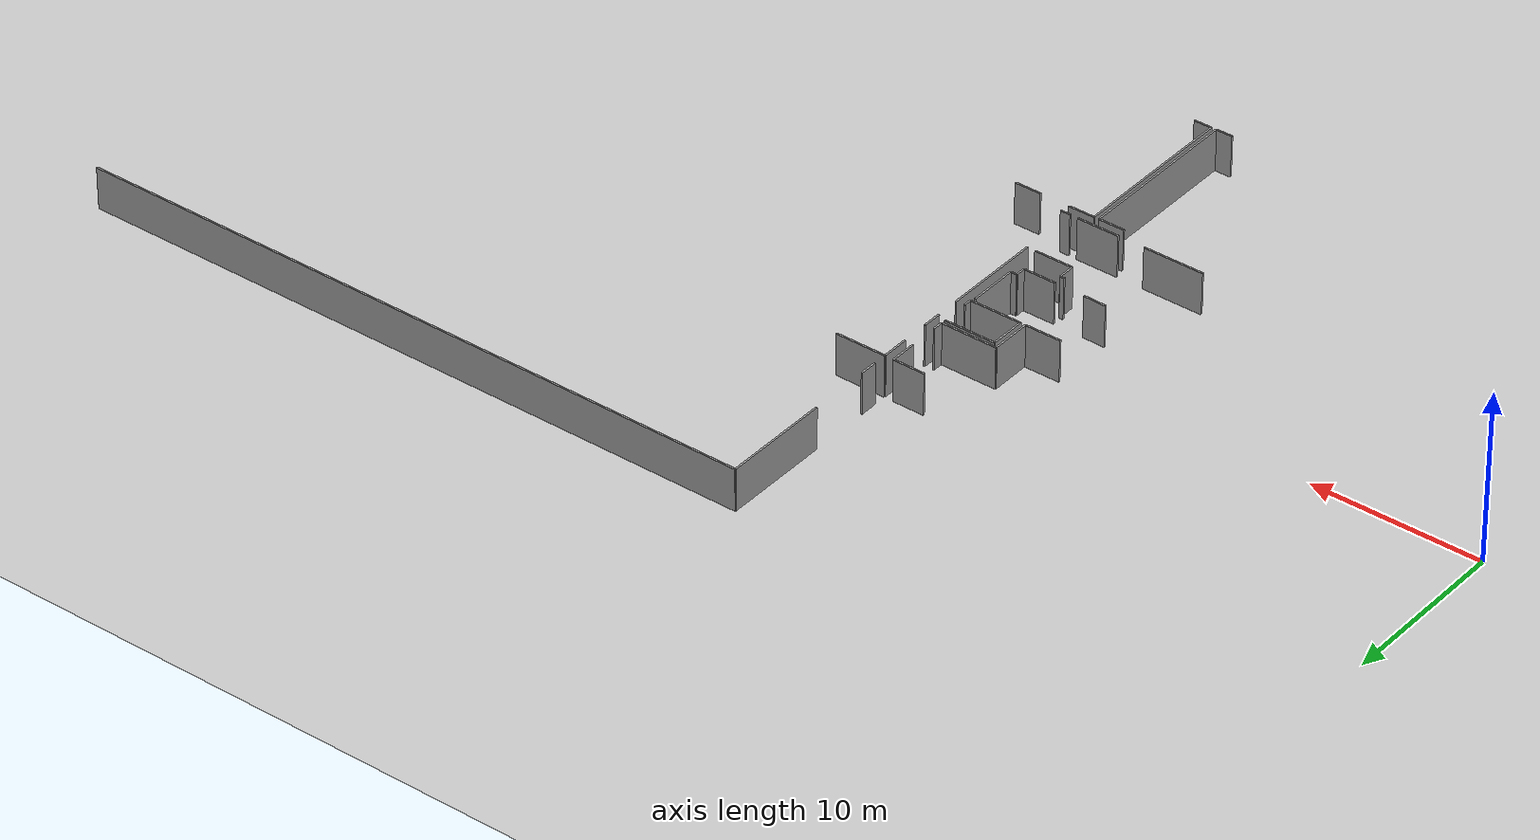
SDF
<sdf version="1.6">
 <world name="default">
  <model name="ground_plane">
   <static>1</static>
   <link name="link">
    <collision name="collision">
     <geometry><plane><normal>0 0 1</normal><size>100 100</size></plane></geometry>
     <surface><friction><ode><mu>100</mu><mu2>50</mu2></ode></friction></surface>
    </collision>
    <visual name="visual">
     <cast_shadows>0</cast_shadows>
     <geometry><plane><normal>0 0 1</normal><size>100 100</size></plane></geometry>
     <material>
      <script><uri>file://media/materials/scripts/gazebo.material</uri><name>Gazebo/Grey</name></script>
     </material>
    </visual>
   </link>
  </model>
  <model name="50055641">
   <static>1</static>
   <link name="Wall_231">
    <collision name="Wall_231_Collision">
     <geometry><box><size>0.249590574972 0.1 2.5</size></box></geometry>
     <pose>0.124795287486 0 1.25 0 0 0</pose>
    </collision>
    <visual name="Wall_231_Visual">
     <pose>0.124795287486 0 1.25 0 0 0</pose>
     <geometry><box><size>0.249590574972 0.1 2.5</size></box></geometry>
     <material>
      <script><uri>file://media/materials/scripts/gazebo.material</uri><name>Gazebo/Grey</name></script>
      <ambient>1 1 1 1</ambient>
     </material>
    </visual>
    <pose>96.645380797 -22.3005243179 0 0 0 0.0</pose>
   </link>
   <link name="Wall_232">
    <collision name="Wall_232_Collision">
     <geometry><box><size>0.997473625411 0.1 2.5</size></box></geometry>
     <pose>0.498736812706 0 1.25 0 0 0</pose>
    </collision>
    <visual name="Wall_232_Visual">
     <pose>0.498736812706 0 1.25 0 0 0</pose>
     <geometry><box><size>0.997473625411 0.1 2.5</size></box></geometry>
     <material>
      <script><uri>file://media/materials/scripts/gazebo.material</uri><name>Gazebo/Grey</name></script>
      <ambient>1 1 1 1</ambient>
     </material>
    </visual>
    <pose>96.894971372 -22.3005243179 0 0 0 -1.57079632679</pose>
   </link>
   <link name="Wall_233">
    <collision name="Wall_233_Collision">
     <geometry><box><size>2.29430359659 0.1 2.5</size></box></geometry>
     <pose>1.1471517983 0 1.25 0 0 0</pose>
    </collision>
    <visual name="Wall_233_Visual">
     <pose>1.1471517983 0 1.25 0 0 0</pose>
     <geometry><box><size>2.29430359659 0.1 2.5</size></box></geometry>
     <material>
      <script><uri>file://media/materials/scripts/gazebo.material</uri><name>Gazebo/Grey</name></script>
      <ambient>1 1 1 1</ambient>
     </material>
    </visual>
    <pose>96.894971372 -23.2979979434 0 0 0 0.0</pose>
   </link>
   <link name="Wall_234">
    <collision name="Wall_234_Collision">
     <geometry><box><size>2.50542726199 0.1 2.5</size></box></geometry>
     <pose>1.252713631 0 1.25 0 0 0</pose>
    </collision>
    <visual name="Wall_234_Visual">
     <pose>1.252713631 0 1.25 0 0 0</pose>
     <geometry><box><size>2.50542726199 0.1 2.5</size></box></geometry>
     <material>
      <script><uri>file://media/materials/scripts/gazebo.material</uri><name>Gazebo/Grey</name></script>
      <ambient>1 1 1 1</ambient>
     </material>
    </visual>
    <pose>99.1892749686 -26.8594243928 0 0 0 3.14159265359</pose>
   </link>
   <link name="Wall_235">
    <collision name="Wall_235_Collision">
     <geometry><box><size>3.58008861354 0.1 2.5</size></box></geometry>
     <pose>1.79004430677 0 1.25 0 0 0</pose>
    </collision>
    <visual name="Wall_235_Visual">
     <pose>1.79004430677 0 1.25 0 0 0</pose>
     <geometry><box><size>3.58008861354 0.1 2.5</size></box></geometry>
     <material>
      <script><uri>file://media/materials/scripts/gazebo.material</uri><name>Gazebo/Grey</name></script>
      <ambient>1 1 1 1</ambient>
     </material>
    </visual>
    <pose>95.1008645533 -26.8594243928 0 0 0 3.14159265359</pose>
   </link>
   <link name="Wall_296">
    <collision name="Wall_296_Collision">
     <geometry><box><size>2.89771356752 0.1 2.5</size></box></geometry>
     <pose>1.44885678376 0 1.25 0 0 0</pose>
    </collision>
    <visual name="Wall_296_Visual">
     <pose>1.44885678376 0 1.25 0 0 0</pose>
     <geometry><box><size>2.89771356752 0.1 2.5</size></box></geometry>
     <material>
      <script><uri>file://media/materials/scripts/gazebo.material</uri><name>Gazebo/Grey</name></script>
      <ambient>1 1 1 1</ambient>
     </material>
    </visual>
    <pose>99.0618136577 -18.219858066 0 0 0 -1.57079632679</pose>
   </link>
   <link name="Wall_297">
    <collision name="Wall_297_Collision">
     <geometry><box><size>0.377559699882 0.1 2.5</size></box></geometry>
     <pose>0.188779849941 0 1.25 0 0 0</pose>
    </collision>
    <visual name="Wall_297_Visual">
     <pose>0.188779849941 0 1.25 0 0 0</pose>
     <geometry><box><size>0.377559699882 0.1 2.5</size></box></geometry>
     <material>
      <script><uri>file://media/materials/scripts/gazebo.material</uri><name>Gazebo/Grey</name></script>
      <ambient>1 1 1 1</ambient>
     </material>
    </visual>
    <pose>99.0618136577 -21.1175716335 0 0 0 3.14159265359</pose>
   </link>
   <link name="Wall_298">
    <collision name="Wall_298_Collision">
     <geometry><box><size>0.590206807247 0.1 2.5</size></box></geometry>
     <pose>0.295103403623 0 1.25 0 0 0</pose>
    </collision>
    <visual name="Wall_298_Visual">
     <pose>0.295103403623 0 1.25 0 0 0</pose>
     <geometry><box><size>0.590206807247 0.1 2.5</size></box></geometry>
     <material>
      <script><uri>file://media/materials/scripts/gazebo.material</uri><name>Gazebo/Grey</name></script>
      <ambient>1 1 1 1</ambient>
     </material>
    </visual>
    <pose>98.6842539578 -21.1175716335 0 0 0 -1.57079632679</pose>
   </link>
   <link name="Wall_299">
    <collision name="Wall_299_Collision">
     <geometry><box><size>1.89490789524 0.1 2.5</size></box></geometry>
     <pose>0.947453947619 0 1.25 0 0 0</pose>
    </collision>
    <visual name="Wall_299_Visual">
     <pose>0.947453947619 0 1.25 0 0 0</pose>
     <geometry><box><size>1.89490789524 0.1 2.5</size></box></geometry>
     <material>
      <script><uri>file://media/materials/scripts/gazebo.material</uri><name>Gazebo/Grey</name></script>
      <ambient>1 1 1 1</ambient>
     </material>
    </visual>
    <pose>98.6842539578 -21.7077784408 0 0 0 3.14159265359</pose>
   </link>
   <link name="Wall_300">
    <collision name="Wall_300_Collision">
     <geometry><box><size>1.33669845748 0.1 2.5</size></box></geometry>
     <pose>0.668349228739 0 1.25 0 0 0</pose>
    </collision>
    <visual name="Wall_300_Visual">
     <pose>0.668349228739 0 1.25 0 0 0</pose>
     <geometry><box><size>1.33669845748 0.1 2.5</size></box></geometry>
     <material>
      <script><uri>file://media/materials/scripts/gazebo.material</uri><name>Gazebo/Grey</name></script>
      <ambient>1 1 1 1</ambient>
     </material>
    </visual>
    <pose>95.0059033376 -21.7077784408 0 0 0 3.11756155952</pose>
   </link>
   <link name="Wall_303">
    <collision name="Wall_303_Collision">
     <geometry><box><size>1.53296347548 0.1 2.5</size></box></geometry>
     <pose>0.766481737739 0 1.25 0 0 0</pose>
    </collision>
    <visual name="Wall_303_Visual">
     <pose>0.766481737739 0 1.25 0 0 0</pose>
     <geometry><box><size>1.53296347548 0.1 2.5</size></box></geometry>
     <material>
      <script><uri>file://media/materials/scripts/gazebo.material</uri><name>Gazebo/Grey</name></script>
      <ambient>1 1 1 1</ambient>
     </material>
    </visual>
    <pose>96.7734768754 -27.4507737816 0 0 0 0.0</pose>
   </link>
   <link name="Wall_304">
    <collision name="Wall_304_Collision">
     <geometry><box><size>10.0177734896 0.1 2.5</size></box></geometry>
     <pose>5.00888674479 0 1.25 0 0 0</pose>
    </collision>
    <visual name="Wall_304_Visual">
     <pose>5.00888674479 0 1.25 0 0 0</pose>
     <geometry><box><size>10.0177734896 0.1 2.5</size></box></geometry>
     <material>
      <script><uri>file://media/materials/scripts/gazebo.material</uri><name>Gazebo/Grey</name></script>
      <ambient>1 1 1 1</ambient>
     </material>
    </visual>
    <pose>98.3064403509 -27.4507737816 0 0 0 -1.57079632679</pose>
   </link>
   <link name="Wall_305">
    <collision name="Wall_305_Collision">
     <geometry><box><size>0.992776346024 0.1 2.5</size></box></geometry>
     <pose>0.496388173012 0 1.25 0 0 0</pose>
    </collision>
    <visual name="Wall_305_Visual">
     <pose>0.496388173012 0 1.25 0 0 0</pose>
     <geometry><box><size>0.992776346024 0.1 2.5</size></box></geometry>
     <material>
      <script><uri>file://media/materials/scripts/gazebo.material</uri><name>Gazebo/Grey</name></script>
      <ambient>1 1 1 1</ambient>
     </material>
    </visual>
    <pose>98.3064403509 -37.4685472711 0 0 0 3.14159265359</pose>
   </link>
   <link name="Wall_356">
    <collision name="Wall_356_Collision">
     <geometry><box><size>5.89825946756 0.1 2.5</size></box></geometry>
     <pose>2.94912973378 0 1.25 0 0 0</pose>
    </collision>
    <visual name="Wall_356_Visual">
     <pose>2.94912973378 0 1.25 0 0 0</pose>
     <geometry><box><size>5.89825946756 0.1 2.5</size></box></geometry>
     <material>
      <script><uri>file://media/materials/scripts/gazebo.material</uri><name>Gazebo/Grey</name></script>
      <ambient>1 1 1 1</ambient>
     </material>
    </visual>
    <pose>99.667381838 -23.3214843403 0 0 0 1.57079632679</pose>
   </link>
   <link name="Wall_357">
    <collision name="Wall_357_Collision">
     <geometry><box><size>1.13280605314 0.1 2.5</size></box></geometry>
     <pose>0.566403026571 0 1.25 0 0 0</pose>
    </collision>
    <visual name="Wall_357_Visual">
     <pose>0.566403026571 0 1.25 0 0 0</pose>
     <geometry><box><size>1.13280605314 0.1 2.5</size></box></geometry>
     <material>
      <script><uri>file://media/materials/scripts/gazebo.material</uri><name>Gazebo/Grey</name></script>
      <ambient>1 1 1 1</ambient>
     </material>
    </visual>
    <pose>99.667381838 -16.0408282446 0 0 0 1.57079632679</pose>
   </link>
   <link name="Wall_358">
    <collision name="Wall_358_Collision">
     <geometry><box><size>1.59136208407 0.1 2.5</size></box></geometry>
     <pose>0.795681042034 0 1.25 0 0 0</pose>
    </collision>
    <visual name="Wall_358_Visual">
     <pose>0.795681042034 0 1.25 0 0 0</pose>
     <geometry><box><size>1.59136208407 0.1 2.5</size></box></geometry>
     <material>
      <script><uri>file://media/materials/scripts/gazebo.material</uri><name>Gazebo/Grey</name></script>
      <ambient>1 1 1 1</ambient>
     </material>
    </visual>
    <pose>99.667381838 -13.3061229672 0 0 0 1.57079632679</pose>
   </link>
   <link name="Wall_359">
    <collision name="Wall_359_Collision">
     <geometry><box><size>2.9897548528 0.1 2.5</size></box></geometry>
     <pose>1.4948774264 0 1.25 0 0 0</pose>
    </collision>
    <visual name="Wall_359_Visual">
     <pose>1.4948774264 0 1.25 0 0 0</pose>
     <geometry><box><size>2.9897548528 0.1 2.5</size></box></geometry>
     <material>
      <script><uri>file://media/materials/scripts/gazebo.material</uri><name>Gazebo/Grey</name></script>
      <ambient>1 1 1 1</ambient>
     </material>
    </visual>
    <pose>99.667381838 -11.7147608831 0 0 0 0.0</pose>
   </link>
   <link name="Wall_366">
    <collision name="Wall_366_Collision">
     <geometry><box><size>0.587413830314 0.1 2.5</size></box></geometry>
     <pose>0.293706915157 0 1.25 0 0 0</pose>
    </collision>
    <visual name="Wall_366_Visual">
     <pose>0.293706915157 0 1.25 0 0 0</pose>
     <geometry><box><size>0.587413830314 0.1 2.5</size></box></geometry>
     <material>
      <script><uri>file://media/materials/scripts/gazebo.material</uri><name>Gazebo/Grey</name></script>
      <ambient>1 1 1 1</ambient>
     </material>
    </visual>
    <pose>100.254795668 -26.8758013939 0 0 0 3.14159265359</pose>
   </link>
   <link name="Wall_367">
    <collision name="Wall_367_Collision">
     <geometry><box><size>10.000761721 0.1 2.5</size></box></geometry>
     <pose>5.00038086049 0 1.25 0 0 0</pose>
    </collision>
    <visual name="Wall_367_Visual">
     <pose>5.00038086049 0 1.25 0 0 0</pose>
     <geometry><box><size>10.000761721 0.1 2.5</size></box></geometry>
     <material>
      <script><uri>file://media/materials/scripts/gazebo.material</uri><name>Gazebo/Grey</name></script>
      <ambient>1 1 1 1</ambient>
     </material>
    </visual>
    <pose>98.5984333938 -37.4393479668 0 0 0 1.57079632679</pose>
   </link>
   <link name="Wall_368">
    <collision name="Wall_368_Collision">
     <geometry><box><size>1.55073696505 0.1 2.5</size></box></geometry>
     <pose>0.775368482525 0 1.25 0 0 0</pose>
    </collision>
    <visual name="Wall_368_Visual">
     <pose>0.775368482525 0 1.25 0 0 0</pose>
     <geometry><box><size>1.55073696505 0.1 2.5</size></box></geometry>
     <material>
      <script><uri>file://media/materials/scripts/gazebo.material</uri><name>Gazebo/Grey</name></script>
      <ambient>1 1 1 1</ambient>
     </material>
    </visual>
    <pose>98.5984333938 -27.4385862459 0 0 0 0.0</pose>
   </link>
   <link name="Wall_369">
    <collision name="Wall_369_Collision">
     <geometry><box><size>1.57422336198 0.1 2.5</size></box></geometry>
     <pose>0.787111680991 0 1.25 0 0 0</pose>
    </collision>
    <visual name="Wall_369_Visual">
     <pose>0.787111680991 0 1.25 0 0 0</pose>
     <geometry><box><size>1.57422336198 0.1 2.5</size></box></geometry>
     <material>
      <script><uri>file://media/materials/scripts/gazebo.material</uri><name>Gazebo/Grey</name></script>
      <ambient>1 1 1 1</ambient>
     </material>
    </visual>
    <pose>101.918267339 -27.4385862459 0 0 0 0.0</pose>
   </link>
   <link name="Wall_372">
    <collision name="Wall_372_Collision">
     <geometry><box><size>1.04685915925 0.1 2.5</size></box></geometry>
     <pose>0.523429579623 0 1.25 0 0 0</pose>
    </collision>
    <visual name="Wall_372_Visual">
     <pose>0.523429579623 0 1.25 0 0 0</pose>
     <geometry><box><size>1.04685915925 0.1 2.5</size></box></geometry>
     <material>
      <script><uri>file://media/materials/scripts/gazebo.material</uri><name>Gazebo/Grey</name></script>
      <ambient>1 1 1 1</ambient>
     </material>
    </visual>
    <pose>99.6452919296 -37.4404905483 0 0 0 3.14050121575</pose>
   </link>
   <link name="Wall_392">
    <collision name="Wall_392_Collision">
     <geometry><box><size>2.12151988727 0.1 2.5</size></box></geometry>
     <pose>1.06075994363 0 1.25 0 0 0</pose>
    </collision>
    <visual name="Wall_392_Visual">
     <pose>1.06075994363 0 1.25 0 0 0</pose>
     <geometry><box><size>2.12151988727 0.1 2.5</size></box></geometry>
     <material>
      <script><uri>file://media/materials/scripts/gazebo.material</uri><name>Gazebo/Grey</name></script>
      <ambient>1 1 1 1</ambient>
     </material>
    </visual>
    <pose>96.1173812033 -17.970267491 0 0 0 1.57079632679</pose>
   </link>
   <link name="Wall_393">
    <collision name="Wall_393_Collision">
     <geometry><box><size>3.04307532151 0.1 2.5</size></box></geometry>
     <pose>1.52153766075 0 1.25 0 0 0</pose>
    </collision>
    <visual name="Wall_393_Visual">
     <pose>1.52153766075 0 1.25 0 0 0</pose>
     <geometry><box><size>3.04307532151 0.1 2.5</size></box></geometry>
     <material>
      <script><uri>file://media/materials/scripts/gazebo.material</uri><name>Gazebo/Grey</name></script>
      <ambient>1 1 1 1</ambient>
     </material>
    </visual>
    <pose>96.1173812033 -15.8487476038 0 0 0 0.0</pose>
   </link>
   <link name="Wall_394">
    <collision name="Wall_394_Collision">
     <geometry><box><size>0.49359519608 0.1 2.5</size></box></geometry>
     <pose>0.24679759804 0 1.25 0 0 0</pose>
    </collision>
    <visual name="Wall_394_Visual">
     <pose>0.24679759804 0 1.25 0 0 0</pose>
     <geometry><box><size>0.49359519608 0.1 2.5</size></box></geometry>
     <material>
      <script><uri>file://media/materials/scripts/gazebo.material</uri><name>Gazebo/Grey</name></script>
      <ambient>1 1 1 1</ambient>
     </material>
    </visual>
    <pose>99.1604565248 -17.4586448984 0 0 0 -1.57079632679</pose>
   </link>
   <link name="Wall_395">
    <collision name="Wall_395_Collision">
     <geometry><box><size>3.04312871884 0.1 2.5</size></box></geometry>
     <pose>1.52156435942 0 1.25 0 0 0</pose>
    </collision>
    <visual name="Wall_395_Visual">
     <pose>1.52156435942 0 1.25 0 0 0</pose>
     <geometry><box><size>3.04312871884 0.1 2.5</size></box></geometry>
     <material>
      <script><uri>file://media/materials/scripts/gazebo.material</uri><name>Gazebo/Grey</name></script>
      <ambient>1 1 1 1</ambient>
     </material>
    </visual>
    <pose>99.1604565248 -17.9522400945 0 0 0 -3.13566865113</pose>
   </link>
   <link name="Wall_398">
    <collision name="Wall_398_Collision">
     <geometry><box><size>1.88157777806 0.1 2.5</size></box></geometry>
     <pose>0.94078888903 0 1.25 0 0 0</pose>
    </collision>
    <visual name="Wall_398_Visual">
     <pose>0.94078888903 0 1.25 0 0 0</pose>
     <geometry><box><size>1.88157777806 0.1 2.5</size></box></geometry>
     <material>
      <script><uri>file://media/materials/scripts/gazebo.material</uri><name>Gazebo/Grey</name></script>
      <ambient>1 1 1 1</ambient>
     </material>
    </visual>
    <pose>97.2597087687 -11.7075245338 0 0 0 0.0</pose>
   </link>
   <link name="Wall_399">
    <collision name="Wall_399_Collision">
     <geometry><box><size>1.55898894235 0.1 2.5</size></box></geometry>
     <pose>0.779494471175 0 1.25 0 0 0</pose>
    </collision>
    <visual name="Wall_399_Visual">
     <pose>0.779494471175 0 1.25 0 0 0</pose>
     <geometry><box><size>1.55898894235 0.1 2.5</size></box></geometry>
     <material>
      <script><uri>file://media/materials/scripts/gazebo.material</uri><name>Gazebo/Grey</name></script>
      <ambient>1 1 1 1</ambient>
     </material>
    </visual>
    <pose>99.1412865467 -11.7075245338 0 0 0 -1.57079632679</pose>
   </link>
   <link name="Wall_400">
    <collision name="Wall_400_Collision">
     <geometry><box><size>0.622072134977 0.1 2.5</size></box></geometry>
     <pose>0.311036067488 0 1.25 0 0 0</pose>
    </collision>
    <visual name="Wall_400_Visual">
     <pose>0.311036067488 0 1.25 0 0 0</pose>
     <geometry><box><size>0.622072134977 0.1 2.5</size></box></geometry>
     <material>
      <script><uri>file://media/materials/scripts/gazebo.material</uri><name>Gazebo/Grey</name></script>
      <ambient>1 1 1 1</ambient>
     </material>
    </visual>
    <pose>99.1412865467 -14.9603270322 0 0 0 -1.57079632679</pose>
   </link>
   <link name="Wall_401">
    <collision name="Wall_401_Collision">
     <geometry><box><size>3.32948241059 0.1 2.5</size></box></geometry>
     <pose>1.6647412053 0 1.25 0 0 0</pose>
    </collision>
    <visual name="Wall_401_Visual">
     <pose>1.6647412053 0 1.25 0 0 0</pose>
     <geometry><box><size>3.32948241059 0.1 2.5</size></box></geometry>
     <material>
      <script><uri>file://media/materials/scripts/gazebo.material</uri><name>Gazebo/Grey</name></script>
      <ambient>1 1 1 1</ambient>
     </material>
    </visual>
    <pose>99.1412865467 -15.5823991672 0 0 0 3.14159265359</pose>
   </link>
   <link name="Wall_402">
    <collision name="Wall_402_Collision">
     <geometry><box><size>2.38672574236 0.1 2.5</size></box></geometry>
     <pose>1.19336287118 0 1.25 0 0 0</pose>
    </collision>
    <visual name="Wall_402_Visual">
     <pose>1.19336287118 0 1.25 0 0 0</pose>
     <geometry><box><size>2.38672574236 0.1 2.5</size></box></geometry>
     <material>
      <script><uri>file://media/materials/scripts/gazebo.material</uri><name>Gazebo/Grey</name></script>
      <ambient>1 1 1 1</ambient>
     </material>
    </visual>
    <pose>95.8118041361 -15.5823991672 0 0 0 -1.57079632679</pose>
   </link>
   <link name="Wall_403">
    <collision name="Wall_403_Collision">
     <geometry><box><size>2.11684126175 0.1 2.5</size></box></geometry>
     <pose>1.05842063088 0 1.25 0 0 0</pose>
    </collision>
    <visual name="Wall_403_Visual">
     <pose>1.05842063088 0 1.25 0 0 0</pose>
     <geometry><box><size>2.11684126175 0.1 2.5</size></box></geometry>
     <material>
      <script><uri>file://media/materials/scripts/gazebo.material</uri><name>Gazebo/Grey</name></script>
      <ambient>1 1 1 1</ambient>
     </material>
    </visual>
    <pose>95.8118041361 -17.9691249095 0 0 0 -3.13739452544</pose>
   </link>
   <link name="Wall_404">
    <collision name="Wall_404_Collision">
     <geometry><box><size>1.02832332517 0.1 2.5</size></box></geometry>
     <pose>0.514161662583 0 1.25 0 0 0</pose>
    </collision>
    <visual name="Wall_404_Visual">
     <pose>0.514161662583 0 1.25 0 0 0</pose>
     <geometry><box><size>1.02832332517 0.1 2.5</size></box></geometry>
     <material>
      <script><uri>file://media/materials/scripts/gazebo.material</uri><name>Gazebo/Grey</name></script>
      <ambient>1 1 1 1</ambient>
     </material>
    </visual>
    <pose>99.6838857926 -10.91051048 0 0 0 1.57079632679</pose>
   </link>
   <link name="Wall_405">
    <collision name="Wall_405_Collision">
     <geometry><box><size>6.30692277419 0.1 2.5</size></box></geometry>
     <pose>3.15346138709 0 1.25 0 0 0</pose>
    </collision>
    <visual name="Wall_405_Visual">
     <pose>3.15346138709 0 1.25 0 0 0</pose>
     <geometry><box><size>6.30692277419 0.1 2.5</size></box></geometry>
     <material>
      <script><uri>file://media/materials/scripts/gazebo.material</uri><name>Gazebo/Grey</name></script>
      <ambient>1 1 1 1</ambient>
     </material>
    </visual>
    <pose>99.6838857926 -6.30692277419 0 0 0 1.57079632679</pose>
   </link>
   <link name="Wall_406">
    <collision name="Wall_406_Collision">
     <geometry><box><size>40.8879127576 0.1 2.5</size></box></geometry>
     <pose>20.4439563788 0 1.25 0 0 0</pose>
    </collision>
    <visual name="Wall_406_Visual">
     <pose>20.4439563788 0 1.25 0 0 0</pose>
     <geometry><box><size>40.8879127576 0.1 2.5</size></box></geometry>
     <material>
      <script><uri>file://media/materials/scripts/gazebo.material</uri><name>Gazebo/Grey</name></script>
      <ambient>1 1 1 1</ambient>
     </material>
    </visual>
    <pose>99.6838857926 -0.0 0 0 0 0.0</pose>
   </link>
   <pose>-69.25 18.7344164583 0 0 0 0</pose>
  </model>
 </world>
</sdf>
